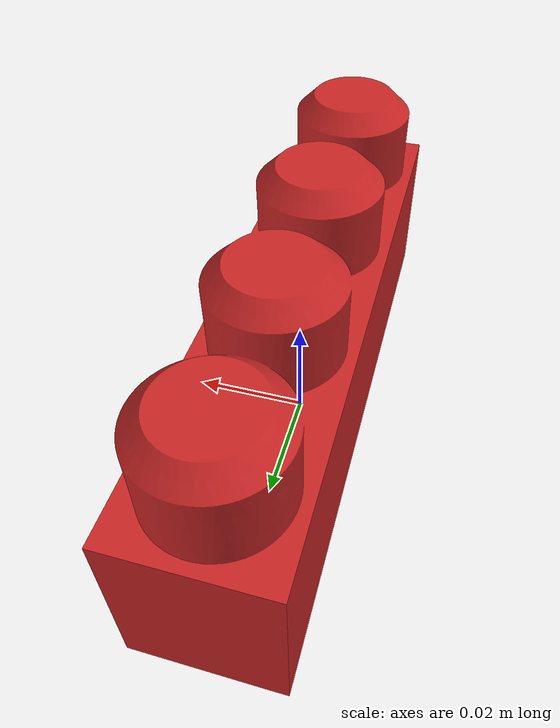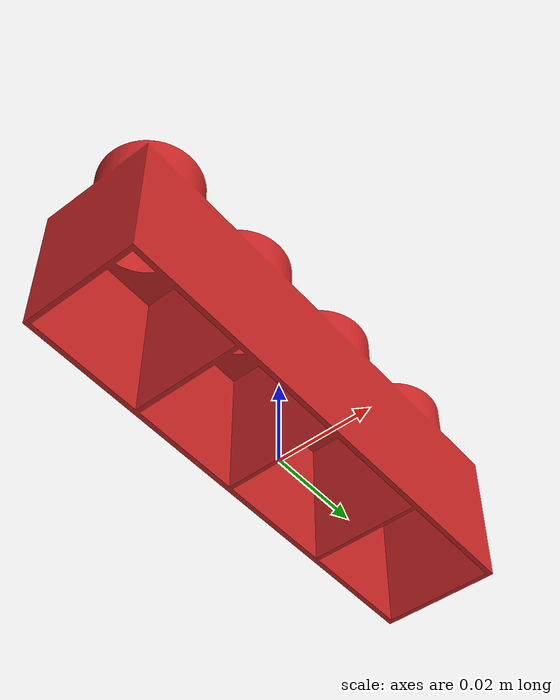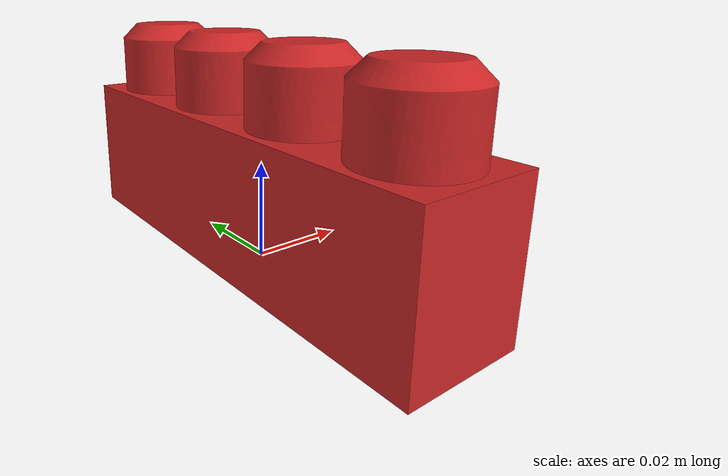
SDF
<?xml version='1.0'?>
<sdf version="1.6">

         <model name="mesh_X1-Y4-Z2">
             <static>0</static>
             <self_collide>0</self_collide>
             <allow_auto_disable>1</allow_auto_disable>

            <pose>0 0 0 0 -0 0</pose>

             <link name="link">

                 <gravity>1</gravity>
                 <self_collide>0</self_collide>
                 <kinematic>0</kinematic>

                <inertial>

                    <mass> 1.0 </mass>

                    <pose> -4.0000000000e-08 -1.8759000000e-04  2.9235880000e-02 0 0 0 </pose>

                    <inertia>
                        <ixx>  5.1220598241e-04 </ixx>
                        <ixy>  5.0978057652e-08 </ixy>
                        <ixz> -3.7212469384e-09 </ixz>
                        <iyy>  2.3708169125e-04 </iyy>
                        <iyz> -5.1441952935e-08 </iyz>
                        <izz>  5.0510161777e-04 </izz>
                    </inertia>
                </inertial>

                 <collision name="collision">

                     <max_contacts>20</max_contacts>

                    <pose>0 0 0 0 -0 0</pose>

                     <geometry>
                         <mesh>
                             <uri>model://X1-Y4-Z2/mesh/X1-Y4-Z2.stl</uri>

                             <scale>0.8 0.8 0.8</scale>
                         </mesh>
                     </geometry>

                     <surface></surface>
                 </collision>

                 <visual name="visual">
                     <cast_shadows>1</cast_shadows>
                     <transparency>0</transparency>

                     <pose>0 0 0 0 -0 0</pose>

                     <material>

                         <script>
                             <uri>file://media/materials/scripts/gazebo.material</uri>

                             <name>Gazebo/RedBright</name>
                         </script>
                         <shader type="vertex">
                           <normal_map>__default__</normal_map>
                         </shader>

                     </material>

                     <geometry>
                         <mesh>
                             <uri>model://X1-Y4-Z2/mesh/X1-Y4-Z2.stl</uri>

                             <scale>0.8 0.8 0.8</scale>
                         </mesh>
                     </geometry>
                 </visual>
             </link>
         </model>
     </sdf>
